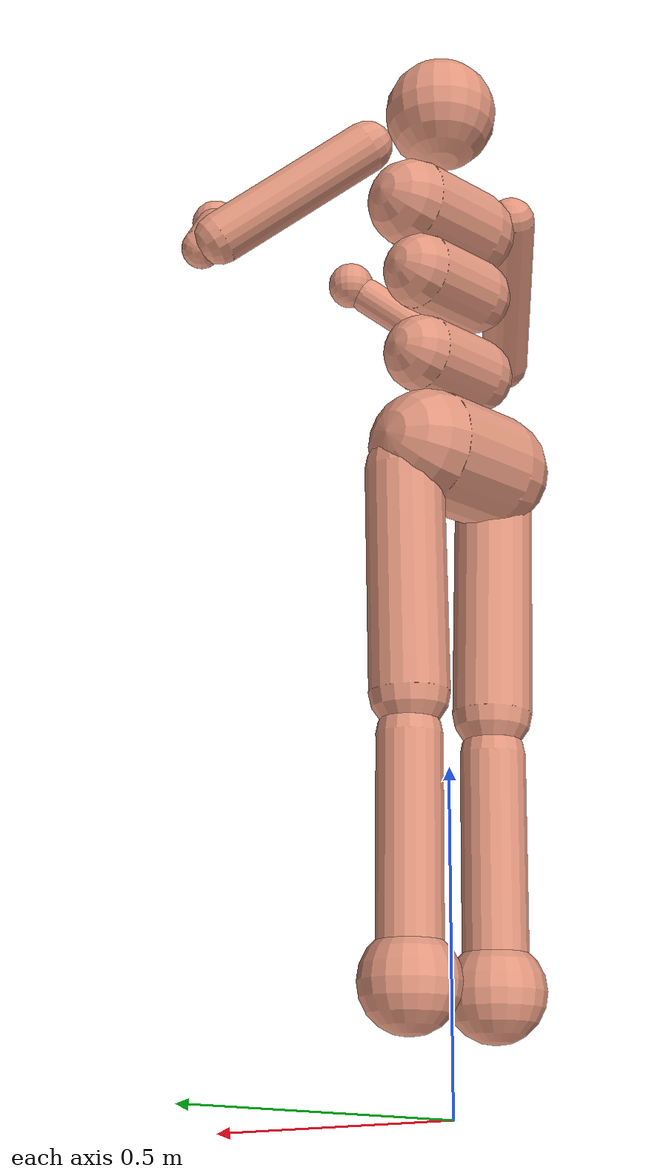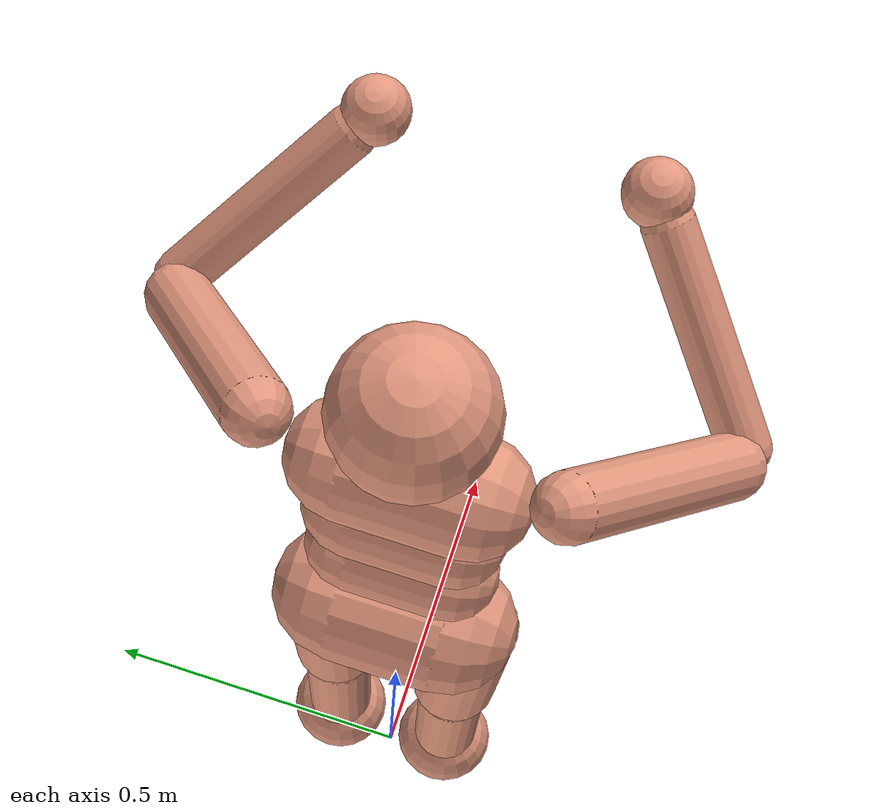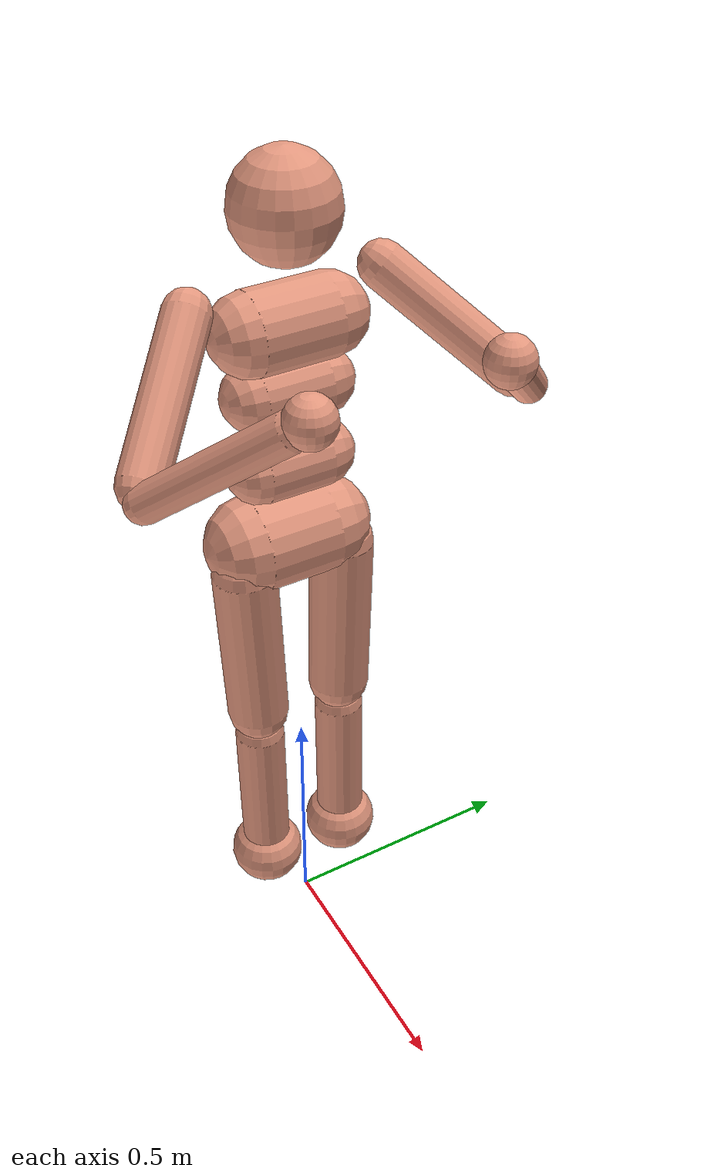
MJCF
<mujoco model="humanoid">
    <compiler angle="degree" inertiafromgeom="true"/>
    <default>
        <joint armature="1" damping="1" limited="true"/>
        <geom conaffinity="1" condim="1" contype="1" margin="0.001" material="geom" rgba="0.9 0.6 0.5 1"/>
        <motor ctrllimited="true" ctrlrange="-.4 .4"/>
    </default>
    <option integrator="RK4" iterations="50" solver="PGS" timestep="0.003">
    </option>
    <size nkey="5" nuser_geom="1"/>
    <visual>
        <map fogend="5" fogstart="3"/>
    </visual>
    <asset>
        <texture builtin="gradient" height="100" rgb1=".9 .6 .5" rgb2="0.9 0.6 0.5" type="skybox" width="100"/>
        <texture builtin="flat" height="1278" mark="cross" markrgb="0.9 0.6 0.5" name="texgeom" random="0.01" rgb1="0.9 0.6 0.5" rgb2="0.9 0.6 0.5" type="cube" width="127"/>
        <texture builtin="checker" height="100" name="texplane" rgb1="0.9 0.6 0.5" rgb2="0.9 0.6 0.5" type="2d" width="100"/>
        <material name="MatPlane" reflectance="0.5" shininess="1" specular="1" texrepeat="60 60" texture="texplane"/>
        <material name="geom" texture="texgeom" texuniform="true"/>
    </asset>
    <worldbody>
         <body name="torso" pos="0 0 1.4">
            <joint armature="0" damping="0" limited="false" name="root" pos="0 0 0" stiffness="0" type="fixed"/>
            <geom fromto="0 -.07 0 0 .07 0" name="torso1" size="0.07" type="capsule" rgba="0.9 0.6 0.5 1"/>
            <geom name="head" pos="0 0 .19" size=".09" type="sphere" user="258"/>
            <geom fromto="-.01 -.06 -.12 -.01 .06 -.12" name="uwaist" size="0.06" type="capsule"/>
            <body name="lwaist" pos="-.01 0 -0.260" quat="1.000 0 -0.002 0">
                <geom fromto="0 -.06 0 0 .06 0" name="lwaist" size="0.06" type="capsule" rgba="0.9 0.6 0.5 1"/>
                <joint armature="0.02" axis="0 0 1" damping="5" name="abdomen_z" pos="0 0 0.065" range="-45 45" stiffness="20" type="hinge"/>
                <joint armature="0.02" axis="0 1 0" damping="5" name="abdomen_y" pos="0 0 0.065" range="-75 30" stiffness="10" type="hinge"/>
                <body name="pelvis" pos="0 0 -0.165" quat="1.000 0 -0.002 0">
                    <joint armature="0.02" axis="1 0 0" damping="5" name="abdomen_x" pos="0 0 0.1" range="-35 35" stiffness="10" type="hinge"/>
                    <geom fromto="-.02 -.07 0 -.02 .07 0" name="butt" size="0.09" type="capsule"/>
                    <body name="right_thigh" pos="0 -0.1 -0.04">
                        <joint armature="0.01" axis="1 0 0" damping="5" name="right_hip_x" pos="0 0 0" range="-25 5" stiffness="10" type="hinge"/>
                        <joint armature="0.01" axis="0 0 1" damping="5" name="right_hip_z" pos="0 0 0" range="-60 35" stiffness="10" type="hinge"/>
                        <joint armature="0.01" axis="0 1 0" damping="5" name="right_hip_y" pos="0 0 0" range="-120 20" stiffness="20" type="hinge"/>
                        <geom fromto="0 0 0 0 0.01 -.34" name="right_thigh1" size="0.06" type="capsule"/>
                        <body name="right_shin" pos="0 0.01 -0.403">
                            <joint armature="0.0060" axis="0 -1 0" name="right_knee" pos="0 0 .02" range="-160 -2" stiffness="1" type="hinge"/>
                            <geom fromto="0 0 0 0 0 -.3" name="right_shin1" size="0.049" type="capsule"/>
                            <body name="right_foot" pos="0 0 -0.45">
                            	<joint armature="0" damping="0" limited="false" name="right_ankle" pos="0 0 0" stiffness="0" type="fixed"/>
                                <geom name="right_foot" pos="0 0 0.1" size="0.075" type="sphere" user="0"/>
                            </body>
                        </body>
                    </body>
                    <body name="left_thigh" pos="0 0.1 -0.04">
                        <joint armature="0.01" axis="-1 0 0" damping="5" name="left_hip_x" pos="0 0 0" range="-25 5" stiffness="10" type="hinge"/>
                        <joint armature="0.01" axis="0 0 -1" damping="5" name="left_hip_z" pos="0 0 0" range="-60 35" stiffness="10" type="hinge"/>
                        <joint armature="0.01" axis="0 1 0" damping="5" name="left_hip_y" pos="0 0 0" range="-120 20" stiffness="20" type="hinge"/>
                        <geom fromto="0 0 0 0 -0.01 -.34" name="left_thigh1" size="0.06" type="capsule"/>
                        <body name="left_shin" pos="0 -0.01 -0.403">
                            <joint armature="0.0060" axis="0 -1 0" name="left_knee" pos="0 0 .02" range="-160 -2" stiffness="1" type="hinge"/>
                            <geom fromto="0 0 0 0 0 -.3" name="left_shin1" size="0.049" type="capsule"/>
                            <body name="left_foot" pos="0 0 -0.45">
                            	<joint armature="0" damping="0" limited="false" name="left_ankle" pos="0 0 0" stiffness="0" type="fixed"/>
                                <geom name="left_foot" type="sphere" size="0.075" pos="0 0 0.1" user="0" />
                            </body>
                        </body>
                    </body>
                </body>
            </body>
            <body name="right_upper_arm" pos="0 -0.17 0.06">
                <joint armature="0.0068" axis="2 1 1" name="right_shoulder1" pos="0 0 0" range="-85 60" stiffness="1" type="hinge"/>
                <joint armature="0.0051" axis="0 -1 1" name="right_shoulder2" pos="0 0 0" range="-85 60" stiffness="1" type="hinge"/>
                <geom fromto="0 0 0 .16 -.16 -.16" name="right_uarm1" size="0.04 0.16" type="capsule"/>
                <body name="right_lower_arm" pos=".18 -.18 -.18">
                    <joint armature="0.0028" axis="0 -1 1" name="right_elbow" pos="0 0 0" range="-90 50" stiffness="0" type="hinge"/>
                    <geom fromto="0.01 0.01 0.01 .17 .17 .17" name="right_larm" size="0.031" type="capsule"/>
                    <body name="right_hand" pos=".18 .18 .18">
	                    <joint armature="0" damping="0" limited="false" name="right_wrist" pos="0 0 0" stiffness="0" type="fixed"/>
		            <geom name="hand_right" pos=".01 .01 .01" size="0.04" type="sphere"/>
		    </body>
                </body>
            </body>
            <body name="left_upper_arm" pos="0 0.17 0.06">
                <joint armature="0.0068" axis="2 -1 1" name="left_shoulder1" pos="0 0 0" range="-60 85" stiffness="1" type="hinge"/>
                <joint armature="0.0051" axis="0 1 1" name="left_shoulder2" pos="0 0 0" range="-60 85" stiffness="1" type="hinge"/>
                <geom fromto="0 0 0 .16 .16 -.16" name="left_uarm1" size="0.04 0.16" type="capsule"/>
                <body name="left_lower_arm" pos=".18 .18 -.18">
                    <joint armature="0.0028" axis="0 -1 -1" name="left_elbow" pos="0 0 0" range="-90 50" stiffness="0" type="hinge"/>
                    <geom fromto="0.01 -0.01 0.01 .17 -.17 .17" name="left_larm" size="0.031" type="capsule"/>
                    <body name="left_hand" pos=".18 -.18 .18">
	                    <joint armature="0" damping="0" limited="false" name="left_wrist" pos="0 0 0" stiffness="0" type="fixed"/>
		            <geom name="hand_left" pos=".01 -.01 .01" size="0.04" type="sphere"/>
		    </body>
                </body>
            </body>
        </body>
    </worldbody>
    <tendon>
        <fixed name="left_hipknee">
            <joint coef="-1" joint="left_hip_y"/>
            <joint coef="1" joint="left_knee"/>
        </fixed>
        <fixed name="right_hipknee">
            <joint coef="-1" joint="right_hip_y"/>
            <joint coef="1" joint="right_knee"/>
        </fixed>
    </tendon>
    <actuator><!-- this section is not supported, same constants in code -->
        <motor gear="100" joint="abdomen_y" name="abdomen_y"/>
        <motor gear="100" joint="abdomen_z" name="abdomen_z"/>
        <motor gear="100" joint="abdomen_x" name="abdomen_x"/>
        <motor gear="100" joint="right_hip_x" name="right_hip_x"/>
        <motor gear="100" joint="right_hip_z" name="right_hip_z"/>
        <motor gear="300" joint="right_hip_y" name="right_hip_y"/>
        <motor gear="200" joint="right_knee" name="right_knee"/>
        <motor gear="100" joint="left_hip_x" name="left_hip_x"/>
        <motor gear="100" joint="left_hip_z" name="left_hip_z"/>
        <motor gear="300" joint="left_hip_y" name="left_hip_y"/>
        <motor gear="200" joint="left_knee" name="left_knee"/>
        <motor gear="25" joint="right_shoulder1" name="right_shoulder1"/>
        <motor gear="25" joint="right_shoulder2" name="right_shoulder2"/>
        <motor gear="25" joint="right_elbow" name="right_elbow"/>
        <motor gear="25" joint="left_shoulder1" name="left_shoulder1"/>
        <motor gear="25" joint="left_shoulder2" name="left_shoulder2"/>
        <motor gear="25" joint="left_elbow" name="left_elbow"/>
    </actuator>
</mujoco>
